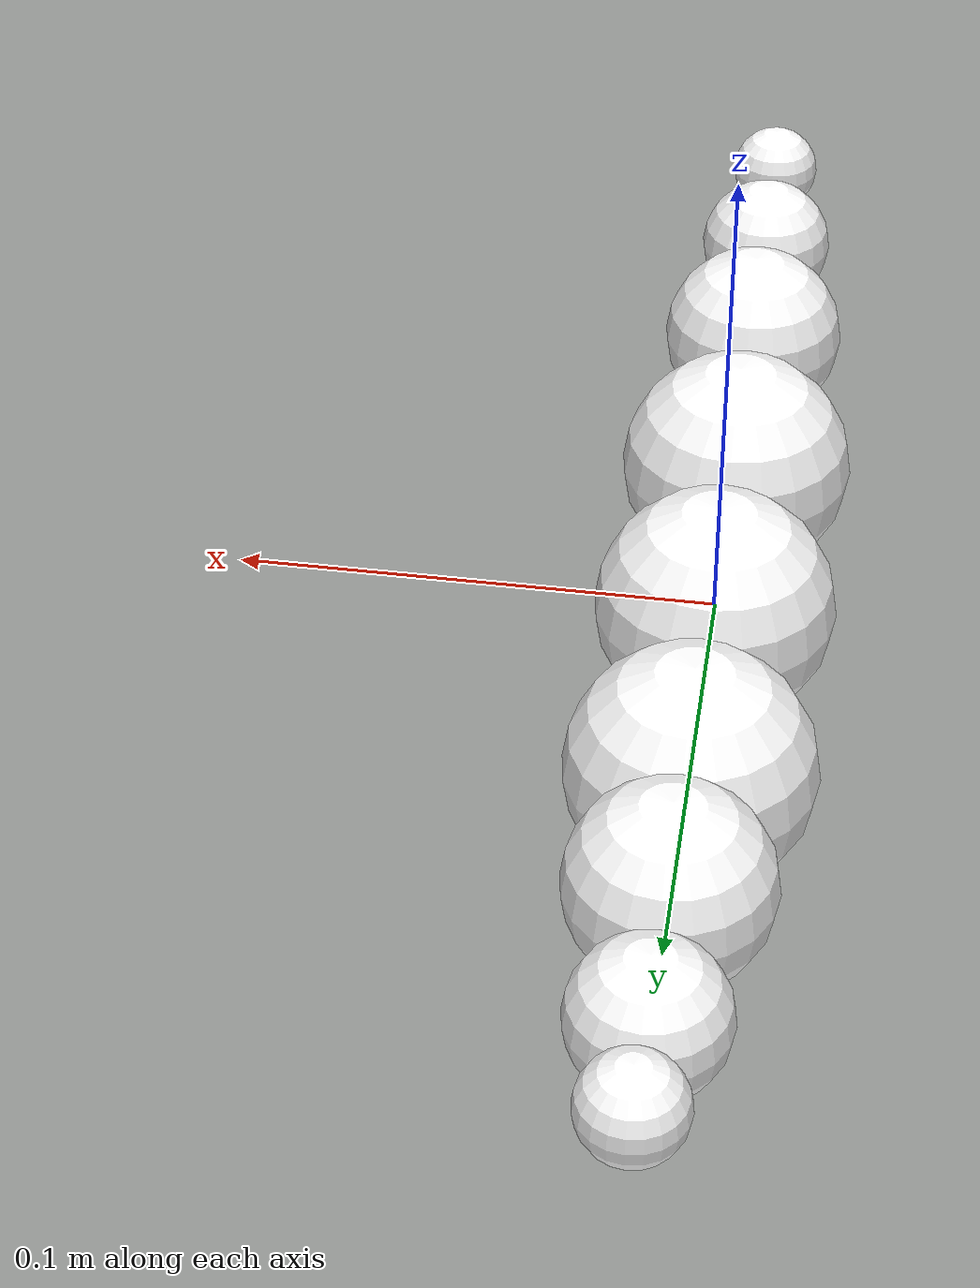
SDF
# This sdf file is auto-generated.
# Manual modification is not recommended.
<sdf version='1.6'>
  <model name='plate'>

    <!-- Ghost body of negligible mass. -->
    <link name="ghost_body_y">
      <inertial>
        <mass>1.0e-6</mass>
        <inertia>
          <ixx>1.0e-6</ixx>
          <ixy>0</ixy>
          <ixz>0</ixz>
          <iyy>1.0e-6</iyy>
          <iyz>0</iyz>
          <izz>1.0e-6</izz>
        </inertia>
      </inertial>
    </link>

    <link name="ghost_body_z">
      <inertial>
        <mass>1.0e-6</mass>
        <inertia>
          <ixx>1.0e-6</ixx>
          <ixy>0</ixy>
          <ixz>0</ixz>
          <iyy>1.0e-6</iyy>
          <iyz>0</iyz>
          <izz>1.0e-6</izz>
        </inertia>
      </inertial>
    </link>

    <joint name="y_slider" type="prismatic">
      <parent>world</parent>
      <child>ghost_body_y</child>
      <axis>
        <xyz>0 1 0</xyz>
        <!-- Drake attaches an actuator to all joints with a non-zero effort
             limit. We do not want an actuator for this joint. -->
        <limit>
          <effort>0</effort>
        </limit>
      </axis>
    </joint>

    <joint name="z_slider" type="prismatic">
      <parent>ghost_body_y</parent>
      <child>ghost_body_z</child>
      <axis>
        <xyz>0 0 1</xyz>
        <!-- Drake attaches an actuator to all joints with a non-zero effort
             limit. We do not want an actuator for this joint and therefore we
             set a zero effort limit. -->
        <limit>
          <effort>0</effort>
        </limit>
      </axis>
    </joint>

    <joint name="rotation" type="revolute">
      <parent>ghost_body_z</parent>
      <child>plate_body</child>
      <axis>
        <xyz>1 0 0</xyz>
        <!-- Drake attaches an actuator to all joints with a non-zero effort
             limit. We do not want an actuator for this joint and therefore we
             set a zero effort limit. -->
        <limit>
          <effort>0</effort>
        </limit>
      </axis>
    </joint>
  <link name='plate_body'>
  <pose> 0 0 0 0 0 0 </pose>
  <inertial>
     <mass> 0.010000 </mass>
     <inertia>
       <ixx>0.000100</ixx>
       <iyy>0.000100</iyy>
       <izz>0.000100</izz>
       <ixy>0.000000</ixy>
       <iyz>0.000000</iyz>
       <ixz>0.000000</ixz>
     </inertia>
  </inertial>

  <visual name='visual_000'>
  <pose> 0 0.000000 0.000000 0 0 0 </pose>
  <geometry>
    <sphere>
       <radius>0.025000</radius>
    </sphere>
  </geometry>
  <material>
    <diffuse>1.0 1.0 1.0 1.0</diffuse>
  </material>
  </visual>

  <collision name='collision_000'>
  <pose> 0 0.000000 0.000000 0 0 0 </pose>
  <geometry>
    <sphere>
       <radius>0.025000</radius>
    </sphere>
  </geometry>
  <surface>
    <friction>
      <ode>
        <mu>0.800000</mu>
        <mu2>0.800000</mu2>
      </ode>
    </friction>
  </surface>
  </collision>
  <visual name='visual_001'>
  <pose> 0 -0.050000 0.000000 0 0 0 </pose>
  <geometry>
    <sphere>
       <radius>0.025000</radius>
    </sphere>
  </geometry>
  <material>
    <diffuse>1.0 1.0 1.0 1.0</diffuse>
  </material>
  </visual>

  <collision name='collision_001'>
  <pose> 0 -0.050000 0.000000 0 0 0 </pose>
  <geometry>
    <sphere>
       <radius>0.025000</radius>
    </sphere>
  </geometry>
  <surface>
    <friction>
      <ode>
        <mu>0.800000</mu>
        <mu2>0.800000</mu2>
      </ode>
    </friction>
  </surface>
  </collision>
  <visual name='visual_002'>
  <pose> 0 0.050000 0.000000 0 0 0 </pose>
  <geometry>
    <sphere>
       <radius>0.025000</radius>
    </sphere>
  </geometry>
  <material>
    <diffuse>1.0 1.0 1.0 1.0</diffuse>
  </material>
  </visual>

  <collision name='collision_002'>
  <pose> 0 0.050000 0.000000 0 0 0 </pose>
  <geometry>
    <sphere>
       <radius>0.025000</radius>
    </sphere>
  </geometry>
  <surface>
    <friction>
      <ode>
        <mu>0.800000</mu>
        <mu2>0.800000</mu2>
      </ode>
    </friction>
  </surface>
  </collision>
  <visual name='visual_003'>
  <pose> 0 -0.090000 0.008000 0 0 0 </pose>
  <geometry>
    <sphere>
       <radius>0.020000</radius>
    </sphere>
  </geometry>
  <material>
    <diffuse>1.0 1.0 1.0 1.0</diffuse>
  </material>
  </visual>

  <collision name='collision_003'>
  <pose> 0 -0.090000 0.008000 0 0 0 </pose>
  <geometry>
    <sphere>
       <radius>0.020000</radius>
    </sphere>
  </geometry>
  <surface>
    <friction>
      <ode>
        <mu>0.800000</mu>
        <mu2>0.800000</mu2>
      </ode>
    </friction>
  </surface>
  </collision>
  <visual name='visual_004'>
  <pose> 0 0.090000 0.008000 0 0 0 </pose>
  <geometry>
    <sphere>
       <radius>0.020000</radius>
    </sphere>
  </geometry>
  <material>
    <diffuse>1.0 1.0 1.0 1.0</diffuse>
  </material>
  </visual>

  <collision name='collision_004'>
  <pose> 0 0.090000 0.008000 0 0 0 </pose>
  <geometry>
    <sphere>
       <radius>0.020000</radius>
    </sphere>
  </geometry>
  <surface>
    <friction>
      <ode>
        <mu>0.800000</mu>
        <mu2>0.800000</mu2>
      </ode>
    </friction>
  </surface>
  </collision>
  <visual name='visual_005'>
  <pose> 0 0.125000 0.011000 0 0 0 </pose>
  <geometry>
    <sphere>
       <radius>0.015000</radius>
    </sphere>
  </geometry>
  <material>
    <diffuse>1.0 1.0 1.0 1.0</diffuse>
  </material>
  </visual>

  <collision name='collision_005'>
  <pose> 0 0.125000 0.011000 0 0 0 </pose>
  <geometry>
    <sphere>
       <radius>0.015000</radius>
    </sphere>
  </geometry>
  <surface>
    <friction>
      <ode>
        <mu>0.800000</mu>
        <mu2>0.800000</mu2>
      </ode>
    </friction>
  </surface>
  </collision>
  <visual name='visual_006'>
  <pose> 0 -0.125000 0.011000 0 0 0 </pose>
  <geometry>
    <sphere>
       <radius>0.015000</radius>
    </sphere>
  </geometry>
  <material>
    <diffuse>1.0 1.0 1.0 1.0</diffuse>
  </material>
  </visual>

  <collision name='collision_006'>
  <pose> 0 -0.125000 0.011000 0 0 0 </pose>
  <geometry>
    <sphere>
       <radius>0.015000</radius>
    </sphere>
  </geometry>
  <surface>
    <friction>
      <ode>
        <mu>0.800000</mu>
        <mu2>0.800000</mu2>
      </ode>
    </friction>
  </surface>
  </collision>
  <visual name='visual_007'>
  <pose> 0 0.150000 0.017000 0 0 0 </pose>
  <geometry>
    <sphere>
       <radius>0.010000</radius>
    </sphere>
  </geometry>
  <material>
    <diffuse>1.0 1.0 1.0 1.0</diffuse>
  </material>
  </visual>

  <collision name='collision_007'>
  <pose> 0 0.150000 0.017000 0 0 0 </pose>
  <geometry>
    <sphere>
       <radius>0.010000</radius>
    </sphere>
  </geometry>
  <surface>
    <friction>
      <ode>
        <mu>0.800000</mu>
        <mu2>0.800000</mu2>
      </ode>
    </friction>
  </surface>
  </collision>
  <visual name='visual_008'>
  <pose> 0 -0.150000 0.017000 0 0 0 </pose>
  <geometry>
    <sphere>
       <radius>0.010000</radius>
    </sphere>
  </geometry>
  <material>
    <diffuse>1.0 1.0 1.0 1.0</diffuse>
  </material>
  </visual>

  <collision name='collision_008'>
  <pose> 0 -0.150000 0.017000 0 0 0 </pose>
  <geometry>
    <sphere>
       <radius>0.010000</radius>
    </sphere>
  </geometry>
  <surface>
    <friction>
      <ode>
        <mu>0.800000</mu>
        <mu2>0.800000</mu2>
      </ode>
    </friction>
  </surface>
  </collision>
  </link>

  </model>
</sdf>
